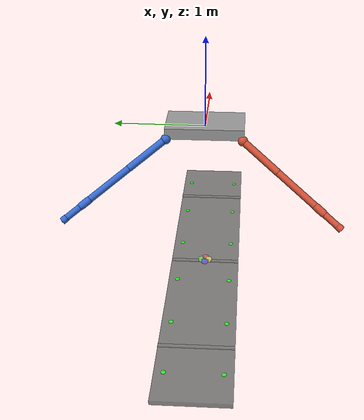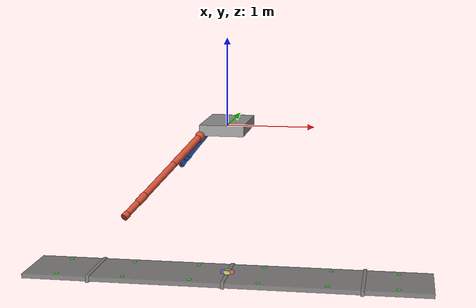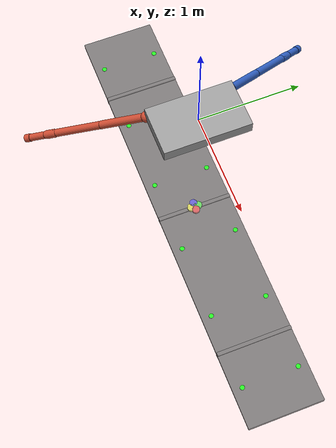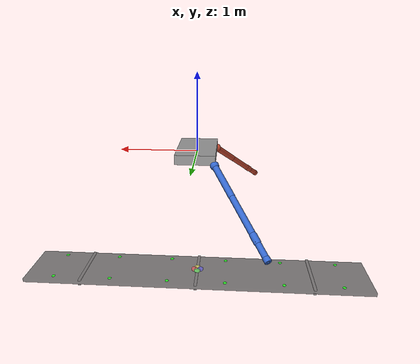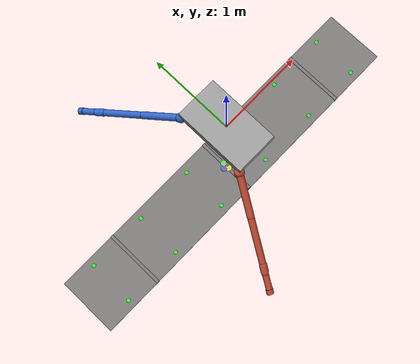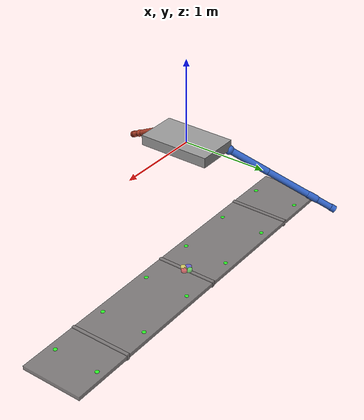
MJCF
<mujoco model="VISPA_crawling_rwa4_pyramid">

  <!-- ==================== COMPILER ==================== -->
  <compiler angle="radian" eulerseq="XYZ" autolimits="true"/>

  <!-- ==================== OPTIONS ==================== -->
  <option gravity="0 0 0" timestep="0.001" integrator="RK4">
    <flag energy="enable" contact="enable"/>
  </option>

  <!-- ==================== VISUAL ==================== -->
  <visual>
    <headlight diffuse="0.6 0.6 0.6" ambient="0.3 0.3 0.3"/>
    <rgba com="0 1 0 0" contactforce="1 0 0 0.5"/>
    <scale com="0.05" contactwidth="0.02" contactheight="0.05"
           forcewidth="0.02" framelength="0.15" framewidth="0.005"/>
  </visual>

  <!-- ==================== DEFAULTS ==================== -->
  <default>
    <default class="robot_joint">
      <joint damping="0.05" armature="0.05" limited="true"
             range="-3.14159 3.14159"/>
      <default class="arm_a">
        <geom rgba="0.2 0.4 0.8 1" contype="0" conaffinity="0"/>
      </default>
      <default class="arm_b">
        <geom rgba="0.8 0.3 0.2 1" contype="0" conaffinity="0"/>
      </default>
    </default>
    <default class="structure">
      <geom rgba="0.4 0.4 0.4 0.8" contype="2" conaffinity="2"/>
    </default>
    <default class="anchor">
      <site type="cylinder" size="0.025 0.005" rgba="0 1 0 0.8"/>
    </default>
    <default class="gripper">
      <site type="sphere" size="0.03" rgba="1 1 0 0.8"/>
    </default>
  </default>

  <!-- ==================== WORLDBODY ==================== -->
  <worldbody>
    <light pos="0 0 5" dir="0 0 -1" diffuse="0.8 0.8 0.8" castshadow="false"/>
    <light pos="3 3 3" dir="-1 -1 -1" diffuse="0.5 0.5 0.5" castshadow="true"/>

    <!-- ============ FLOATING STRUCTURE ============ -->
    <body name="structure" pos="0 0 -1.8">
      <freejoint name="structure_free"/>
      <inertial pos="0 0 0" mass="500"
                fullinertia="42 105 125 0 0 0"/>
      <geom class="structure" type="box" size="2.4 0.4 0.025" name="beam"/>
      <geom class="structure" type="box" size="0.02 0.4 0.04" pos="-1.6 0 0"/>
      <geom class="structure" type="box" size="0.02 0.4 0.04" pos="0 0 0"/>
      <geom class="structure" type="box" size="0.02 0.4 0.04" pos="1.6 0 0"/>

      <!-- Anchor sites — row A -->
      <site name="anchor_1a" class="anchor" pos="-2.0  0.3 0.025"/>
      <site name="anchor_2a" class="anchor" pos="-1.2  0.3 0.025"/>
      <site name="anchor_3a" class="anchor" pos="-0.4  0.3 0.025"/>
      <site name="anchor_4a" class="anchor" pos=" 0.4  0.3 0.025"/>
      <site name="anchor_5a" class="anchor" pos=" 1.2  0.3 0.025"/>
      <site name="anchor_6a" class="anchor" pos=" 2.0  0.3 0.025"/>
      <!-- Anchor sites — row B -->
      <site name="anchor_1b" class="anchor" pos="-2.0 -0.3 0.025"/>
      <site name="anchor_2b" class="anchor" pos="-1.2 -0.3 0.025"/>
      <site name="anchor_3b" class="anchor" pos="-0.4 -0.3 0.025"/>
      <site name="anchor_4b" class="anchor" pos=" 0.4 -0.3 0.025"/>
      <site name="anchor_5b" class="anchor" pos=" 1.2 -0.3 0.025"/>
      <site name="anchor_6b" class="anchor" pos=" 2.0 -0.3 0.025"/>

      <!-- ============ REACTION WHEEL ASSEMBLY (4-wheel pyramid) ============ -->

      <!-- rw1: azimut 0 deg -->
      <body name="rwa_1" pos="0.04 0 0.05">
        <inertial pos="0 0 0" mass="0.5"
                  fullinertia="0.01 0.006 0.006 0 0 0"/>
        <joint name="rw_1" type="hinge" axis="0.8165 0 0.5774" damping="1e-4" armature="0.01"/>
        <geom type="cylinder" size="0.04 0.015" rgba="0.8 0.2 0.2 0.7"
              contype="0" conaffinity="0"/>
      </body>
      <!-- rw2: azimut 90 deg -->
      <body name="rwa_2" pos="0 0.04 0.05">
        <inertial pos="0 0 0" mass="0.5"
                  fullinertia="0.006 0.01 0.006 0 0 0"/>
        <joint name="rw_2" type="hinge" axis="0 0.8165 0.5774" damping="1e-4" armature="0.01"/>
        <geom type="cylinder" size="0.04 0.015" rgba="0.2 0.8 0.2 0.7"
              contype="0" conaffinity="0"/>
      </body>
      <!-- rw3: azimut 180 deg -->
      <body name="rwa_3" pos="-0.04 0 0.05">
        <inertial pos="0 0 0" mass="0.5"
                  fullinertia="0.01 0.006 0.006 0 0 0"/>
        <joint name="rw_3" type="hinge" axis="-0.8165 0 0.5774" damping="1e-4" armature="0.01"/>
        <geom type="cylinder" size="0.04 0.015" rgba="0.2 0.2 0.8 0.7"
              contype="0" conaffinity="0"/>
      </body>
      <!-- rw4: azimut 270 deg -->
      <body name="rwa_4" pos="0 -0.04 0.05">
        <inertial pos="0 0 0" mass="0.5"
                  fullinertia="0.006 0.01 0.006 0 0 0"/>
        <joint name="rw_4" type="hinge" axis="0 -0.8165 0.5774" damping="1e-4" armature="0.01"/>
        <geom type="cylinder" size="0.04 0.015" rgba="0.8 0.8 0.2 0.7"
              contype="0" conaffinity="0"/>
      </body>
    </body>

    <!-- ============ ROBOT: TORSO (floating base) ============ -->
    <body name="torso" pos="0 0 0">
      <freejoint name="root"/>
      <inertial pos="0 0 0" mass="40.0"
                fullinertia="0.17980580 0.17982988 0.24241079 0 0 0"/>
      <geom type="box" size="0.25 0.43 0.06" rgba="0.6 0.6 0.6 1"
            contype="0" conaffinity="0" name="torso_geom"/>
      <site name="torso_imu" size="0.02" rgba="1 1 1 0.5"/>

      <!-- ========== ARM A (blue) ========== -->
      <body name="Link_1_a" pos="-0.240 0.41469 -0.064498"
            euler="-2.0944 0 0.5236">
        <joint name="Joint_1_a" class="robot_joint" type="hinge" axis="0 0 1"/>
        <inertial pos="0 -0.029 -0.043" mass="2.328"
                  fullinertia="0.012 0.007 0.008 0 0 0.003"/>
        <geom class="arm_a" type="sphere" size="0.055" name="link1a_geom"/>
        <body name="Link_2_a" pos="0 0 0" euler="1.57079632679 -1.57079632679 0">
          <joint name="Joint_2_a" class="robot_joint" type="hinge" axis="0 0 1"/>
          <inertial pos="0.25 0 0.142" mass="3.995"
                    fullinertia="0.010 0.578 0.574 0 0 0"/>
          <geom class="arm_a" type="capsule" fromto="0 0 0  0.5 0 0" size="0.04" name="link2a_geom"/>
          <body name="Link_3_a" pos="0.5 0 0" euler="0 0 -1.57079632679">
            <joint name="Joint_3_a" class="robot_joint" type="hinge" axis="0 0 1"/>
            <inertial pos="0 0.043 0.029" mass="2.328"
                      fullinertia="0.012 0.008 0.007 0 0 0.003"/>
            <geom class="arm_a" type="capsule" fromto="0 0 0  0 0.65 0" size="0.038" name="link3a_geom"/>
            <body name="Link_4_a" pos="0 0.65 0" euler="-1.57079632679 0 0">
              <joint name="Joint_4_a" class="robot_joint" type="hinge" axis="0 0 1"/>
              <inertial pos="0 -0.043 -0.210" mass="3.157"
                        fullinertia="0.199 0.193 0.01 0 0 0.01"/>
              <geom class="arm_a" type="capsule" fromto="0 0 0  0 0 -0.1" size="0.042" name="link4a_geom"/>
              <body name="Link_5_a" pos="0 0 -0.1" euler="1.57079632679 0 0">
                <joint name="Joint_5_a" class="robot_joint" type="hinge" axis="0 0 1"/>
                <inertial pos="0 0.125 -0.007" mass="2.695"
                          fullinertia="0.029 0.006 0.027 0 0 -0.001"/>
                <geom class="arm_a" type="capsule" fromto="0 0 0  0 0.325 0" size="0.036" name="link5a_geom"/>
                <body name="Link_6_a" pos="0 0.325 0" euler="-1.57079632679 0 0">
                  <joint name="Joint_6_a" class="robot_joint" type="hinge" axis="0 0 1"/>
                  <inertial pos="0 0 0" mass="0.924"
                            fullinertia="0.002 0.002 0.001 0 0 0"/>
                  <geom class="arm_a" type="cylinder" size="0.04 0.03" name="link6a_geom"/>
                  <body name="tool_a" pos="0 0 0">
                    <inertial pos="0 0 0" mass="0.1"
                              fullinertia="0.0001 0.0001 0.0001 0 0 0"/>
                    <geom class="arm_a" type="sphere" size="0.025" name="tool_a_geom" rgba="0.2 0.4 0.8 0.5"/>
                    <site name="gripper_a" class="gripper"/>
                  </body>
                </body>
              </body>
            </body>
          </body>
        </body>
      </body>

      <!-- ========== ARM B (red) ========== -->
      <body name="Link_1_b" pos="-0.240 -0.41469 -0.064498"
            euler="1.047197551 3.14159265359 -0.5236">
        <joint name="Joint_1_b" class="robot_joint" type="hinge" axis="0 0 1"/>
        <inertial pos="0 -0.029 -0.043" mass="2.328"
                  fullinertia="0.012 0.007 0.008 0 0 0.003"/>
        <geom class="arm_b" type="sphere" size="0.055" name="link1b_geom"/>
        <body name="Link_2_b" pos="0 0 0" euler="1.57079632679 -1.57079632679 0">
          <joint name="Joint_2_b" class="robot_joint" type="hinge" axis="0 0 1"/>
          <inertial pos="0.25 0 0.142" mass="3.995"
                    fullinertia="0.010 0.578 0.574 0 0 0"/>
          <geom class="arm_b" type="capsule" fromto="0 0 0  0.5 0 0" size="0.04" name="link2b_geom"/>
          <body name="Link_3_b" pos="0.5 0 0" euler="0 0 -1.57079632679">
            <joint name="Joint_3_b" class="robot_joint" type="hinge" axis="0 0 1"/>
            <inertial pos="0 0.043 0.029" mass="2.328"
                      fullinertia="0.012 0.008 0.007 0 0 0.003"/>
            <geom class="arm_b" type="capsule" fromto="0 0 0  0 0.65 0" size="0.038" name="link3b_geom"/>
            <body name="Link_4_b" pos="0 0.65 0" euler="-1.57079632679 0 0">
              <joint name="Joint_4_b" class="robot_joint" type="hinge" axis="0 0 1"/>
              <inertial pos="0 -0.043 -0.210" mass="3.157"
                        fullinertia="0.199 0.193 0.01 0 0 0.01"/>
              <geom class="arm_b" type="capsule" fromto="0 0 0  0 0 -0.1" size="0.042" name="link4b_geom"/>
              <body name="Link_5_b" pos="0 0 -0.1" euler="1.57079632679 0 0">
                <joint name="Joint_5_b" class="robot_joint" type="hinge" axis="0 0 1"/>
                <inertial pos="0 0.125 -0.007" mass="2.695"
                          fullinertia="0.029 0.006 0.027 0 0 -0.001"/>
                <geom class="arm_b" type="capsule" fromto="0 0 0  0 0.325 0" size="0.036" name="link5b_geom"/>
                <body name="Link_6_b" pos="0 0.325 0" euler="-1.57079632679 0 0">
                  <joint name="Joint_6_b" class="robot_joint" type="hinge" axis="0 0 1"/>
                  <inertial pos="0 0 0" mass="0.924"
                            fullinertia="0.002 0.002 0.001 0 0 0"/>
                  <geom class="arm_b" type="cylinder" size="0.04 0.03" name="link6b_geom"/>
                  <body name="tool_b" pos="0 0 0">
                    <inertial pos="0 0 0" mass="0.1"
                              fullinertia="0.0001 0.0001 0.0001 0 0 0"/>
                    <geom class="arm_b" type="sphere" size="0.025" name="tool_b_geom" rgba="0.8 0.3 0.2 0.5"/>
                    <site name="gripper_b" class="gripper"/>
                  </body>
                </body>
              </body>
            </body>
          </body>
        </body>
      </body>

    </body> <!-- end torso -->
  </worldbody>

  <!-- ==================== ACTUATORS ==================== -->
  <actuator>
    <motor name="act_J1a" joint="Joint_1_a" gear="1" ctrlrange="-50 50"/>
    <motor name="act_J2a" joint="Joint_2_a" gear="1" ctrlrange="-50 50"/>
    <motor name="act_J3a" joint="Joint_3_a" gear="1" ctrlrange="-50 50"/>
    <motor name="act_J4a" joint="Joint_4_a" gear="1" ctrlrange="-50 50"/>
    <motor name="act_J5a" joint="Joint_5_a" gear="1" ctrlrange="-50 50"/>
    <motor name="act_J6a" joint="Joint_6_a" gear="1" ctrlrange="-50 50"/>
    <motor name="act_J1b" joint="Joint_1_b" gear="1" ctrlrange="-50 50"/>
    <motor name="act_J2b" joint="Joint_2_b" gear="1" ctrlrange="-50 50"/>
    <motor name="act_J3b" joint="Joint_3_b" gear="1" ctrlrange="-50 50"/>
    <motor name="act_J4b" joint="Joint_4_b" gear="1" ctrlrange="-50 50"/>
    <motor name="act_J5b" joint="Joint_5_b" gear="1" ctrlrange="-50 50"/>
    <motor name="act_J6b" joint="Joint_6_b" gear="1" ctrlrange="-50 50"/>
    <!-- RWA pyramid actuators (ctrl indices 12..15) -->
    <motor name="act_rw_1" joint="rw_1" gear="1" ctrlrange="-0.5 0.5"/>
    <motor name="act_rw_2" joint="rw_2" gear="1" ctrlrange="-0.5 0.5"/>
    <motor name="act_rw_3" joint="rw_3" gear="1" ctrlrange="-0.5 0.5"/>
    <motor name="act_rw_4" joint="rw_4" gear="1" ctrlrange="-0.5 0.5"/>
  </actuator>

  <!-- ==================== EQUALITY CONSTRAINTS ==================== -->
  <equality>
    <weld name="grip_a_to_1a" site1="gripper_a" site2="anchor_1a" solref="0.003 1" active="false"/>
    <weld name="grip_a_to_2a" site1="gripper_a" site2="anchor_2a" solref="0.003 1" active="false"/>
    <weld name="grip_a_to_3a" site1="gripper_a" site2="anchor_3a" solref="0.003 1" active="true"/>
    <weld name="grip_a_to_4a" site1="gripper_a" site2="anchor_4a" solref="0.003 1" active="false"/>
    <weld name="grip_a_to_5a" site1="gripper_a" site2="anchor_5a" solref="0.003 1" active="false"/>
    <weld name="grip_a_to_6a" site1="gripper_a" site2="anchor_6a" solref="0.003 1" active="false"/>
    <weld name="grip_b_to_1b" site1="gripper_b" site2="anchor_1b" solref="0.003 1" active="false"/>
    <weld name="grip_b_to_2b" site1="gripper_b" site2="anchor_2b" solref="0.003 1" active="false"/>
    <weld name="grip_b_to_3b" site1="gripper_b" site2="anchor_3b" solref="0.003 1" active="true"/>
    <weld name="grip_b_to_4b" site1="gripper_b" site2="anchor_4b" solref="0.003 1" active="false"/>
    <weld name="grip_b_to_5b" site1="gripper_b" site2="anchor_5b" solref="0.003 1" active="false"/>
    <weld name="grip_b_to_6b" site1="gripper_b" site2="anchor_6b" solref="0.003 1" active="false"/>
  </equality>

  <contact/>

  <!-- ==================== SENSORS ==================== -->
  <sensor>
    <framepos    name="torso_pos"    objtype="body" objname="torso"/>
    <framequat   name="torso_quat"   objtype="body" objname="torso"/>
    <framelinvel name="torso_linvel" objtype="body" objname="torso"/>
    <frameangvel name="torso_angvel" objtype="body" objname="torso"/>
    <framequat   name="struct_quat"   objtype="body" objname="structure"/>
    <frameangvel name="struct_angvel" objtype="body" objname="structure"/>
    <framepos name="tool_a_pos" objtype="body" objname="tool_a"/>
    <framepos name="tool_b_pos" objtype="body" objname="tool_b"/>
    <jointactuatorfrc name="tau_J1a" joint="Joint_1_a"/>
    <jointactuatorfrc name="tau_J1b" joint="Joint_1_b"/>
    <jointvel name="rw_1_vel" joint="rw_1"/>
    <jointvel name="rw_2_vel" joint="rw_2"/>
    <jointvel name="rw_3_vel" joint="rw_3"/>
    <jointvel name="rw_4_vel" joint="rw_4"/>
  </sensor>

  <!-- ==================== KEYFRAMES ==================== -->
  <keyframe>
    <key name="home" qpos="0 0 -1.8  1 0 0 0  0 0 0 0
                            0 0 0  1 0 0 0
                            0 0 0 0 0 0  0 0 0 0 0 0"/>
  </keyframe>

</mujoco>
